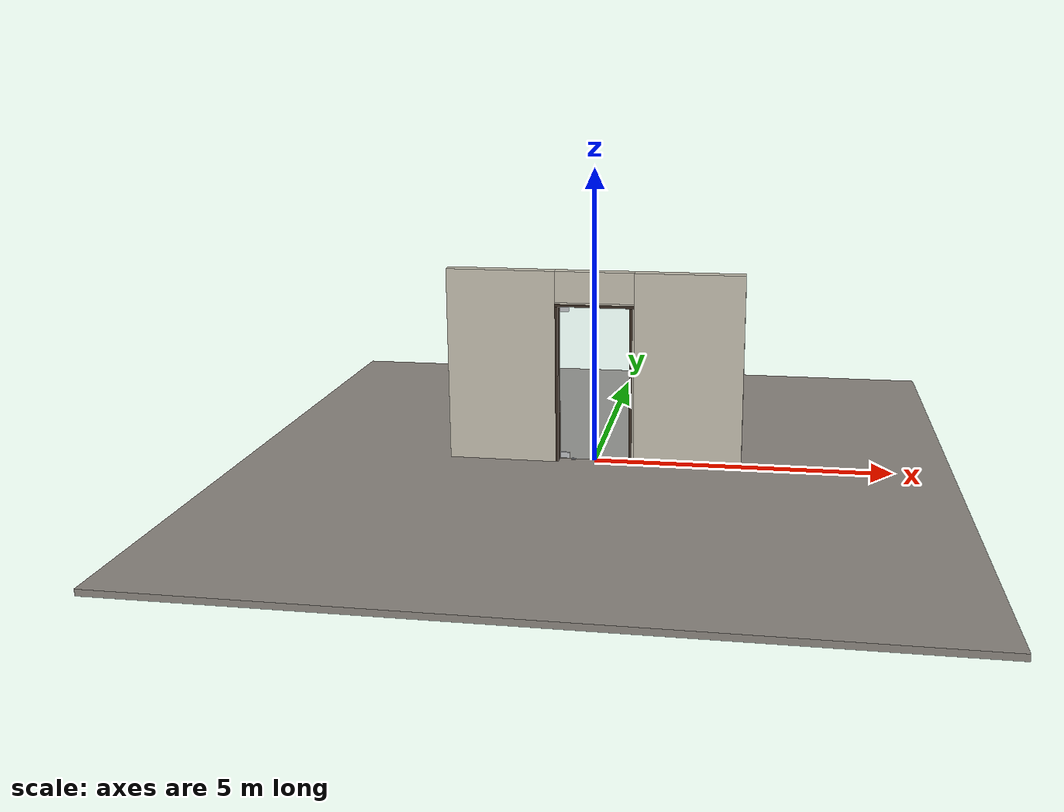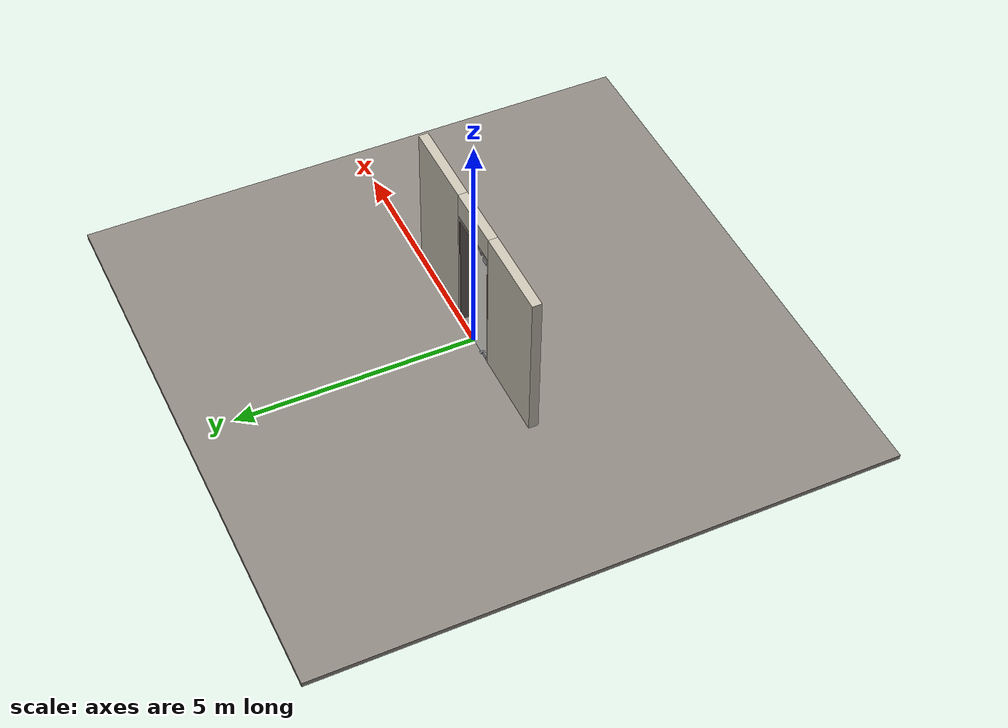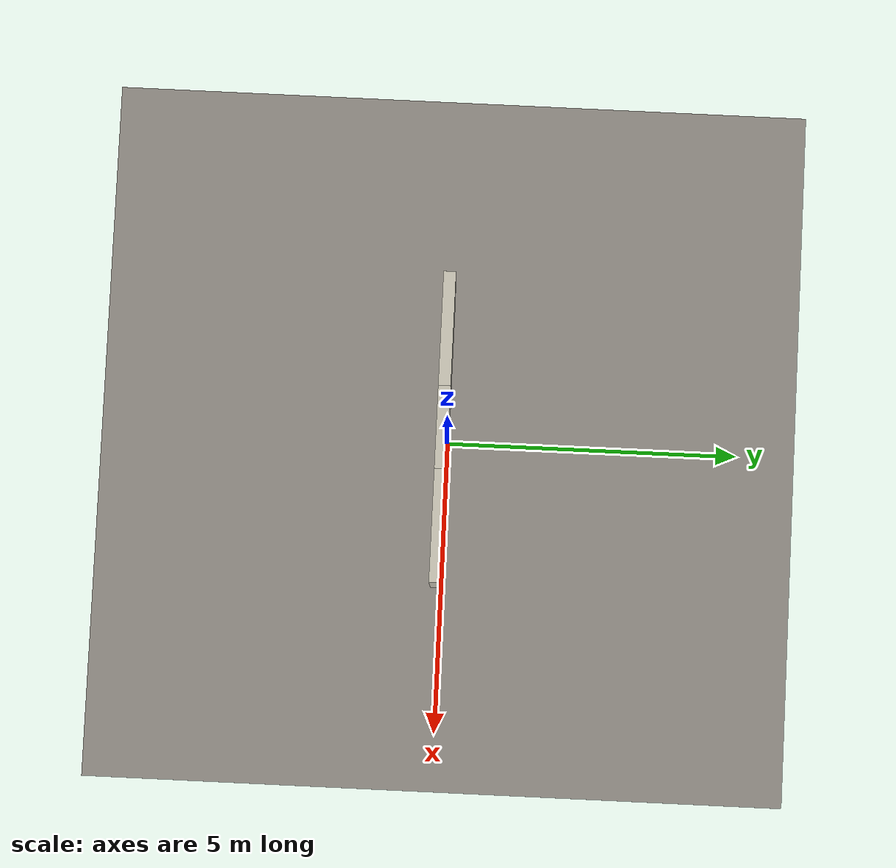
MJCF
<?xml version="1.0" ?>
<mujoco model="db0947_pivot_full">
  <compiler angle="radian" meshdir="../../hardware" texturedir="../../textures" autolimits="true" inertiafromgeom="false"/>
  <option timestep="0.002" integrator="implicitfast" cone="elliptic" impratio="10" noslip_iterations="3">
    <flag multiccd="enable"/>
  </option>
  <size memory="16M"/>
  <default>
    <geom condim="4" solref="0.005 1" solimp="0.95 0.99 0.001"/>
    <joint solreflimit="0.005 1" solimplimit="0.95 0.99 0.001"/>
    <tendon solreflimit="0.005 1"/>
    <equality solref="0.002 1"/>
  </default>
  <visual>
    <headlight ambient="0.4 0.4 0.4" diffuse="0.7 0.7 0.7" specular="0.2 0.2 0.2"/>
    <quality shadowsize="4096"/>
    <map znear="0.01" zfar="60"/>
  </visual>
  <asset>
    <material name="mat_floor" rgba="0.55 0.53 0.5 1" specular="0.2" shininess="0.15" reflectance="0"/>
    <material name="mat_wall" rgba="0.78 0.76 0.7 1" specular="0.2" shininess="0.1" reflectance="0"/>
    <material name="mat_leaf" rgba="0.85 0.92 0.95 0.25" specular="0.2" shininess="0.95" reflectance="0.1"/>
    <material name="mat_glass_leaf" rgba="0.85 0.92 0.95 0.25" specular="0.2" shininess="0.95" reflectance="0.1"/>
    <material name="mat_patch" rgba="0.75 0.76 0.77 1" specular="0.8" shininess="0.65" reflectance="0.4"/>
    <material name="mat_hinge" rgba="0.65 0.66 0.68 1" specular="0.74" shininess="0.5" reflectance="0.36"/>
    <material name="mat_frame" rgba="0.22 0.17 0.13 1" specular="0.8" shininess="0.6" reflectance="0.4"/>
    <texture name="skybox" type="skybox" builtin="gradient" rgb1="0.6 0.7 0.85" rgb2="0.9 0.92 0.95" width="256" height="256"/>
  </asset>
  <worldbody>
    <light name="sun" pos="1.5 -2.5 4" dir="-0.3 0.5 -0.8" directional="true" diffuse="0.8 0.8 0.8" specular="0.3 0.3 0.3" castshadow="true"/>
    <light name="fill" pos="-1.5 2.5 3" dir="0.3 -0.5 -0.7" directional="true" diffuse="0.35 0.35 0.4" castshadow="false"/>
    <camera name="robot_view" pos="0 -3.251 2.2429" xyaxes="1 0 0 0 0.26963 0.962964" fovy="52"/>
    <camera name="far_view" pos="0 3.084 2.2429" xyaxes="-1 0 0 0 -0.26963 0.962964" fovy="52"/>
    <camera name="iso" pos="2.4073 -2.7442 2.7497" xyaxes="0.741536 0.670913 0 -0.242917 0.268487 0.932151" fovy="46"/>
    <camera name="detail_handle" pos="0.674 -0.8835 1.33" xyaxes="0.97561 0.219512 0 -0.070934 0.315262 0.94635" fovy="38"/>
    <geom name="floor" type="box" size="6 6 0.05" pos="0 0 -0.05" material="mat_floor" group="0" contype="1" conaffinity="1" friction="0.8 0.005 0.0001" density="2400"/>
    <geom name="wall_left" type="box" size="0.9245 0.1 1.656" pos="-1.5755 -0.0835 1.656" material="mat_wall" group="0" contype="1" conaffinity="1" friction="0.6 0.005 0.0001" density="800"/>
    <geom name="wall_right" type="box" size="0.9095 0.1 1.656" pos="1.5905 -0.0835 1.656" material="mat_wall" group="0" contype="1" conaffinity="1" friction="0.6 0.005 0.0001" density="800"/>
    <geom name="wall_header" type="box" size="0.666 0.1 0.2625" pos="0.015 -0.0835 3.0495" material="mat_wall" group="0" contype="1" conaffinity="1" friction="0.6 0.005 0.0001" density="800"/>
    <geom name="pivot_bottom_socket" type="box" size="0.035 0.035 0.008" pos="-0.366 0 -0.002" material="mat_hinge" group="1" contype="0" conaffinity="0" density="7850"/>
    <geom name="pivot_top_bracket" type="box" size="0.035 0.035 0.0355" pos="-0.366 0 2.7515" material="mat_hinge" group="1" contype="0" conaffinity="0" density="7850"/>
    <geom name="jamb_hinge" type="box" size="0.0225 0.1 1.356" pos="-0.6285 -0.0835 1.356" material="mat_frame" group="0" contype="1" conaffinity="1" friction="0.6 0.005 0.0001" density="300"/>
    <geom name="jamb_strike" type="box" size="0.0225 0.1 1.356" pos="0.6285 -0.0835 1.356" material="mat_frame" group="0" contype="1" conaffinity="1" friction="0.6 0.005 0.0001" density="300"/>
    <geom name="stud_strike" type="box" size="0.015 0.1 1.356" pos="0.666 -0.0835 1.356" material="mat_wall" group="0" contype="1" conaffinity="1" friction="0.6 0.005 0.0001" density="500"/>
    <geom name="jamb_head" type="box" size="0.666 0.1 0.0225" pos="0.015 -0.0835 2.7345" material="mat_frame" group="0" contype="1" conaffinity="1" friction="0.6 0.005 0.0001" density="300"/>
    <geom name="head_stud" type="box" size="0.666 0.1 0.015" pos="0.015 -0.0835 2.772" material="mat_wall" group="0" contype="1" conaffinity="1" friction="0.6 0.005 0.0001" density="500"/>
    <site name="approach_point" pos="0 -1.5 0" quat="1 0 0 0" size="0.05" rgba="0.2 0.9 0.2 0.5" group="4"/>
    <site name="goal_point" pos="0 1.5 0" quat="1 0 0 0" size="0.05" rgba="0.2 0.9 0.2 0.5" group="4"/>
    <site name="door_plane_center" pos="0 0 1.356" quat="1 0 0 0" size="0.02" rgba="0.2 0.9 0.2 0.5" group="4"/>
    <body name="leaf" pos="-0.606 0 0">
      <inertial pos="0.602284 0 1.357995" mass="157.9" quat="0.499999 -0.499999 0.500001 0.500001" diaginertia="18.976072185 97.880924983 116.847434142"/>
      <joint name="leaf_hinge" type="hinge" axis="0 0 1" pos="0.24 0 0" limited="true" range="0 1.570796" damping="1.061129" frictionloss="3.535673" armature="0.02"/>
      <geom name="leaf_glass" type="box" size="0.6 0.0095 1.35" pos="0.606 0 1.358" material="mat_glass_leaf" group="0" contype="1" conaffinity="1" friction="0.4 0.005 0.0001" density="1"/>
      <geom name="leaf_patch_bot" type="box" size="0.08 0.0175 0.05" pos="0.086 0 0.068" material="mat_patch" group="1" contype="0" conaffinity="0" density="1"/>
      <geom name="leaf_patch_top" type="box" size="0.08 0.0175 0.05" pos="0.086 0 2.648" material="mat_patch" group="1" contype="0" conaffinity="0" density="1"/>
      <geom name="pivot_bottom" type="cylinder" size="0.014 0.004" pos="0.24 0 0.003" material="mat_hinge" group="1" contype="0" conaffinity="0" density="7850"/>
      <geom name="pivot_top" type="cylinder" size="0.014 0.004" pos="0.24 0 2.712" material="mat_hinge" group="1" contype="0" conaffinity="0" density="7850"/>
      <site name="leaf_edge_mid" pos="1.206 0 1.35" quat="1 0 0 0" size="0.02" rgba="0.2 0.9 0.2 0.5" group="4"/>
    </body>
  </worldbody>
  <sensor>
    <jointpos name="leaf_hinge_pos" joint="leaf_hinge"/>
    <jointvel name="leaf_hinge_vel" joint="leaf_hinge"/>
  </sensor>
</mujoco>
